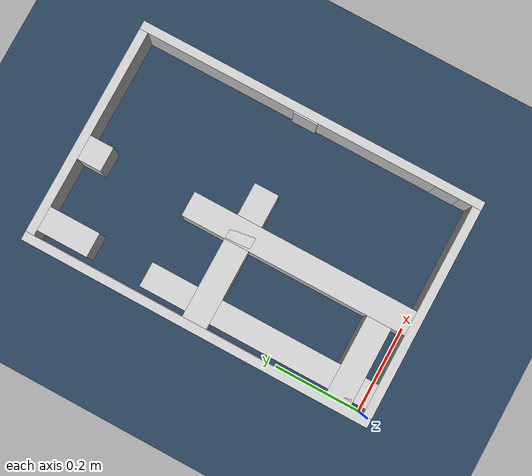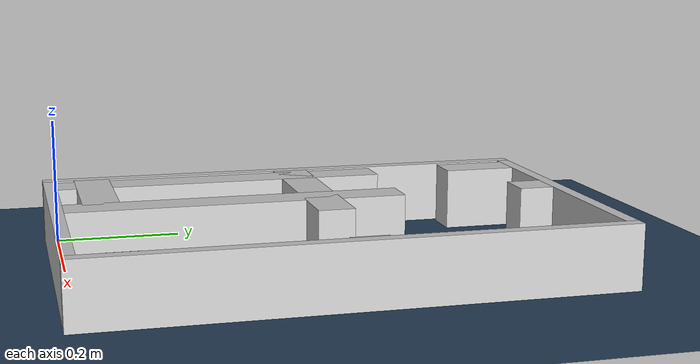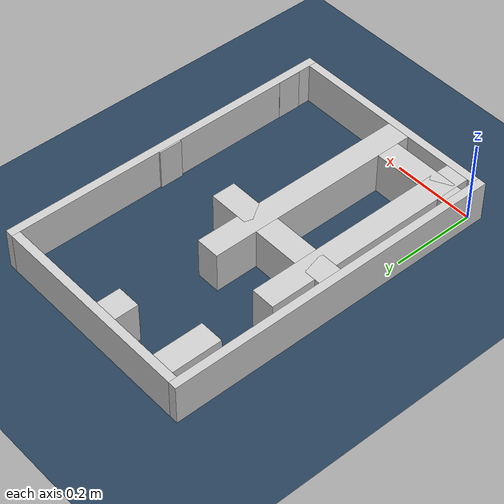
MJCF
<?xml version="1.0" ?>
<mujoco model="generated_real_template">
  <compiler angle="degree"/>
  <option timestep="0.002" integrator="implicitfast" iterations="100" cone="elliptic"/>
  <default>
    <geom density="1"/>
  </default>
  <asset>
    <texture builtin="gradient" height="3072" rgb1="0.3 0.5 0.7" rgb2="0 0 0" type="skybox" width="512"/>
    <texture builtin="checker" height="300" mark="edge" markrgb="0.8 0.8 0.8" name="groundplane" rgb1="0.2 0.3 0.4" rgb2="0.1 0.2 0.3" type="2d" width="300"/>
    <material name="groundplane" reflectance="0.2" texrepeat="5 5" texture="groundplane" texuniform="true"/>
  </asset>
  <worldbody>
    <light dir="0 0 -1" directional="true" pos="0 0 1.5"/>
    <geom name="floor" type="plane" condim="4" friction="0.5 0.005 0.001" material="groundplane" size="0 0 0.05"/>
    <body name="walls">
      <geom name="wall_boundary_left" type="box" condim="4" friction="1.0 0.005 0.0001" rgba="0.8 0.8 0.8 1" pos="-0.010000 0.387500 0.050000" euler="0 0 0.000000" size="0.010000 0.407500 0.050000"/>
      <geom name="wall_boundary_right" type="box" condim="4" friction="1.0 0.005 0.0001" rgba="0.8 0.8 0.8 1" pos="0.500000 0.387500 0.050000" euler="0 0 0.000000" size="0.010000 0.407500 0.050000"/>
      <geom name="wall_boundary_bottom" type="box" condim="4" friction="1.0 0.005 0.0001" rgba="0.8 0.8 0.8 1" pos="0.245000 -0.010000 0.050000" euler="0 0 0.000000" size="0.245000 0.010000 0.050000"/>
      <geom name="wall_boundary_top" type="box" condim="4" friction="1.0 0.005 0.0001" rgba="0.8 0.8 0.8 1" pos="0.245000 0.785000 0.050000" euler="0 0 0.000000" size="0.245000 0.010000 0.050000"/>
      <geom name="wall_inner_1_1" type="box" condim="4" friction="1.0 0.005 0.0001" rgba="0.8 0.8 0.8 1" pos="0.158377 0.394506 0.050000" euler="0 0 0.000000" size="0.158377 0.028500 0.050000"/>
      <geom name="wall_inner_1_2" type="box" condim="4" friction="1.0 0.005 0.0001" rgba="0.8 0.8 0.8 1" pos="0.488076 0.394506 0.050000" euler="0 0 0.000000" size="0.001924 0.028500 0.050000"/>
      <geom name="wall_inner_2_1" type="box" condim="4" friction="1.0 0.005 0.0001" rgba="0.8 0.8 0.8 1" pos="0.096567 0.058727 0.050000" euler="0 0 0.000000" size="0.096567 0.028500 0.050000"/>
      <geom name="wall_inner_2_2" type="box" condim="4" friction="1.0 0.005 0.0001" rgba="0.8 0.8 0.8 1" pos="0.489703 0.058727 0.050000" euler="0 0 0.000000" size="0.000297 0.028500 0.050000"/>
      <geom name="wall_inner_3_1" type="box" condim="4" friction="1.0 0.005 0.0001" rgba="0.8 0.8 0.8 1" pos="0.041084 0.265523 0.050000" euler="0 0 90.000000" size="0.265523 0.028500 0.050000"/>
      <geom name="wall_inner_3_2" type="box" condim="4" friction="1.0 0.005 0.0001" rgba="0.8 0.8 0.8 1" pos="0.041084 0.715893 0.050000" euler="0 0 90.000000" size="0.059107 0.028500 0.050000"/>
      <geom name="wall_inner_4_1" type="box" condim="4" friction="1.0 0.005 0.0001" rgba="0.8 0.8 0.8 1" pos="0.212076 0.262538 0.050000" euler="0 0 90.000000" size="0.262538 0.028500 0.050000"/>
      <geom name="wall_inner_4_2" type="box" condim="4" friction="1.0 0.005 0.0001" rgba="0.8 0.8 0.8 1" pos="0.212076 0.747042 0.050000" euler="0 0 90.000000" size="0.027958 0.028500 0.050000"/>
    </body>
  </worldbody>
</mujoco>
